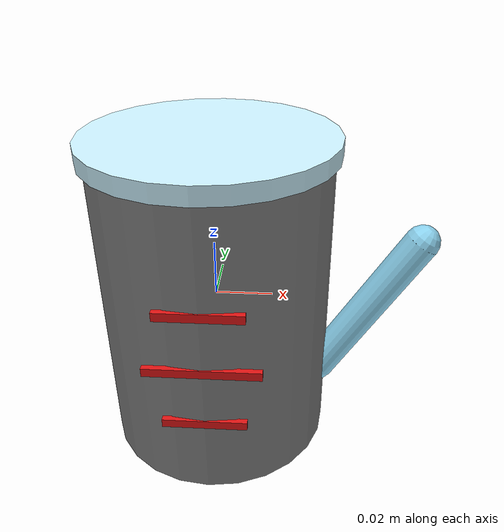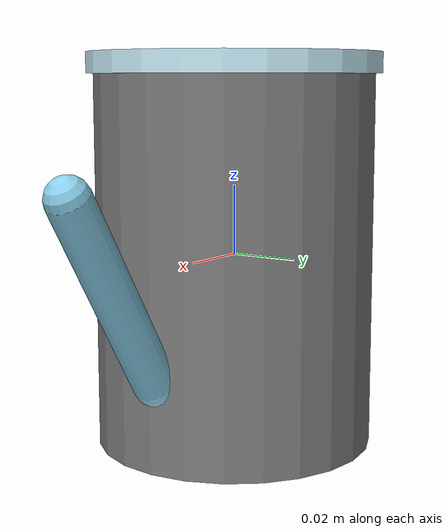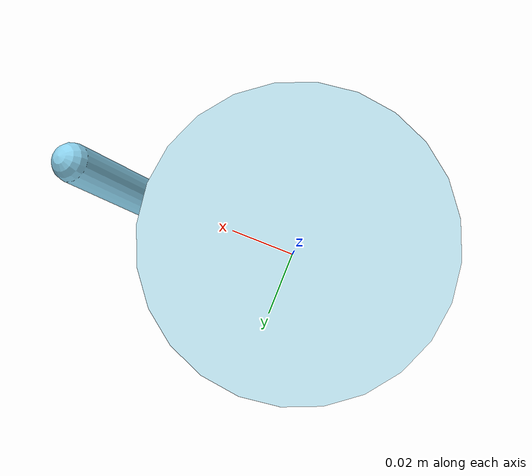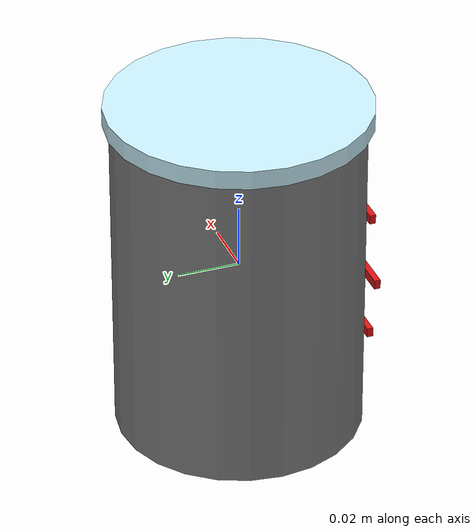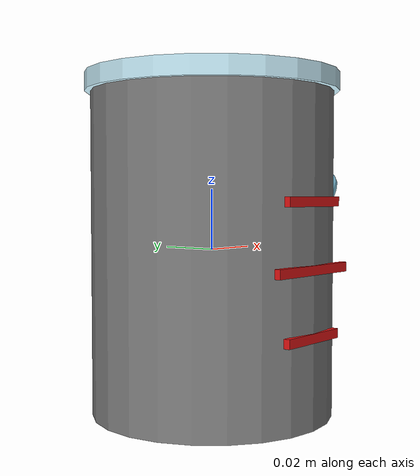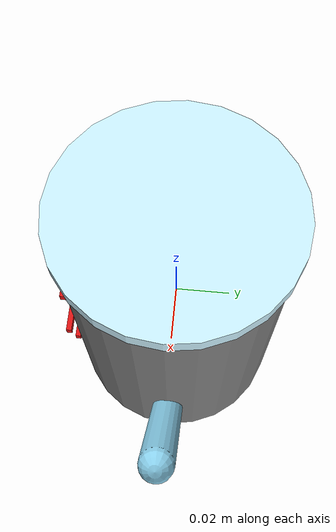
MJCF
<mujoco model="vla82_vla82_014">
  <compiler angle="radian"/>
  <asset>
    <texture name="source_texture" type="2d" file="source_texture.png"/>
    <material name="source_material" texture="source_texture" rgba="1 1 1 1"/>
  </asset>
  <default>
    <default class="visual"><geom contype="0" conaffinity="0" group="1" mass="0"/></default>
    <default class="collision"><geom contype="1" conaffinity="1" group="0" density="300" friction="0.4 0.004 0.0001" solref="0.02 1" solimp="0.9 0.95 0.001"/></default>
    <default class="region"><geom contype="0" conaffinity="0" group="1" rgba="0 1 0 0" mass="0"/></default>
  </default>
  <worldbody><body><body name="object">
    <geom name="measuring_cup_body" class="visual" type="cylinder" pos="0 0 -0.002" size="0.039 0.053" rgba="0.72 0.91 1.00 0.52"/>
    <geom name="measuring_cup_inner" class="visual" type="cylinder" pos="0 0 0.051" size="0.034 0.003" rgba="0.15 0.28 0.35 1"/>
    <geom name="measuring_cup_rim" class="visual" type="cylinder" pos="0 0 0.055" size="0.042 0.003" rgba="0.80 0.95 1.00 0.95"/>
    <geom name="measuring_handle" class="visual" type="capsule" pos="0.054 0 -0.004" size="0.006 0.031" euler="0 0.55 0" rgba="0.55 0.83 0.94 0.92"/>
    <geom name="measure_mark_25" class="visual" type="box" pos="0 -0.0393 -0.026" size="0.014 0.001 0.0015" rgba="0.88 0.08 0.08 1"/>
    <geom name="measure_mark_50" class="visual" type="box" pos="0 -0.0393 -0.005" size="0.019 0.001 0.0015" rgba="0.88 0.08 0.08 1"/>
    <geom name="measure_mark_75" class="visual" type="box" pos="0 -0.0393 0.016" size="0.014 0.001 0.0015" rgba="0.88 0.08 0.08 1"/>
    <geom name="legacy_visual_mass_carrier" class="visual" type="cylinder" size="0.040000 0.055000" mass="0.552920307" rgba="0 0 0 0"/>
    <geom name="collision" class="collision" type="cylinder" size="0.040000 0.055000"/>
    <geom name="reg_bbox" class="region" type="box" pos="0 0 0" size="0.040000 0.040000 0.055000"/>
  </body></body></worldbody>
  <actuator/>
</mujoco>
